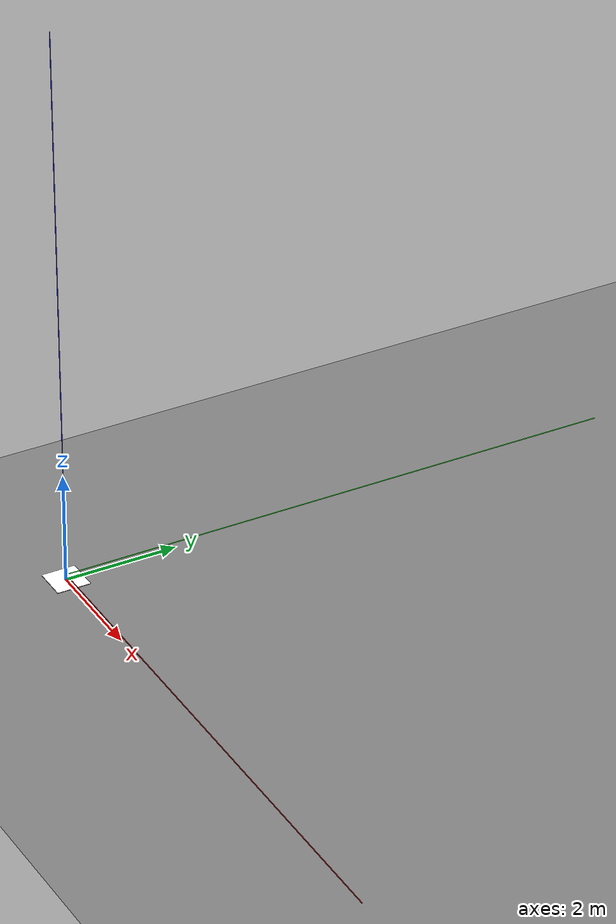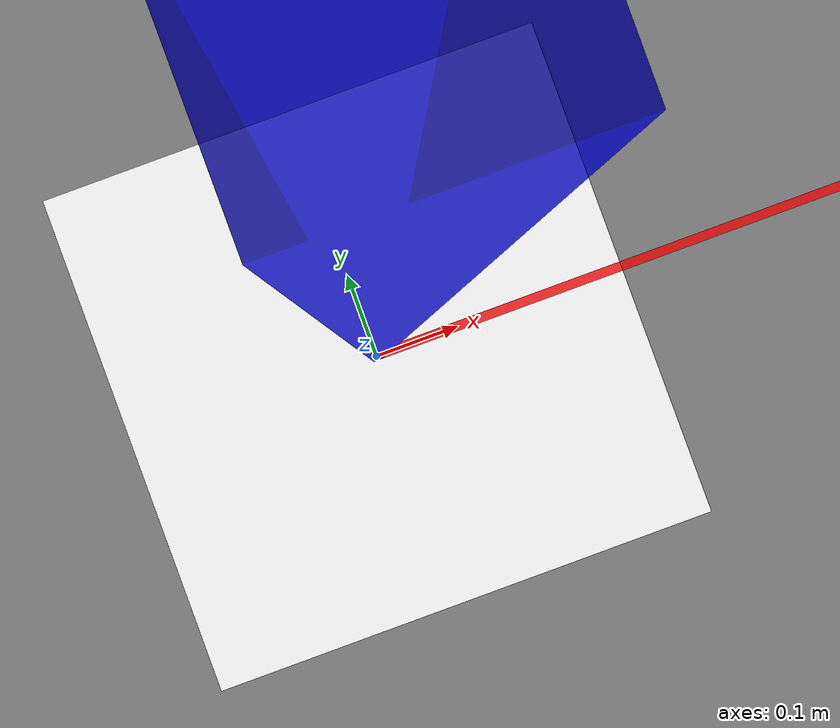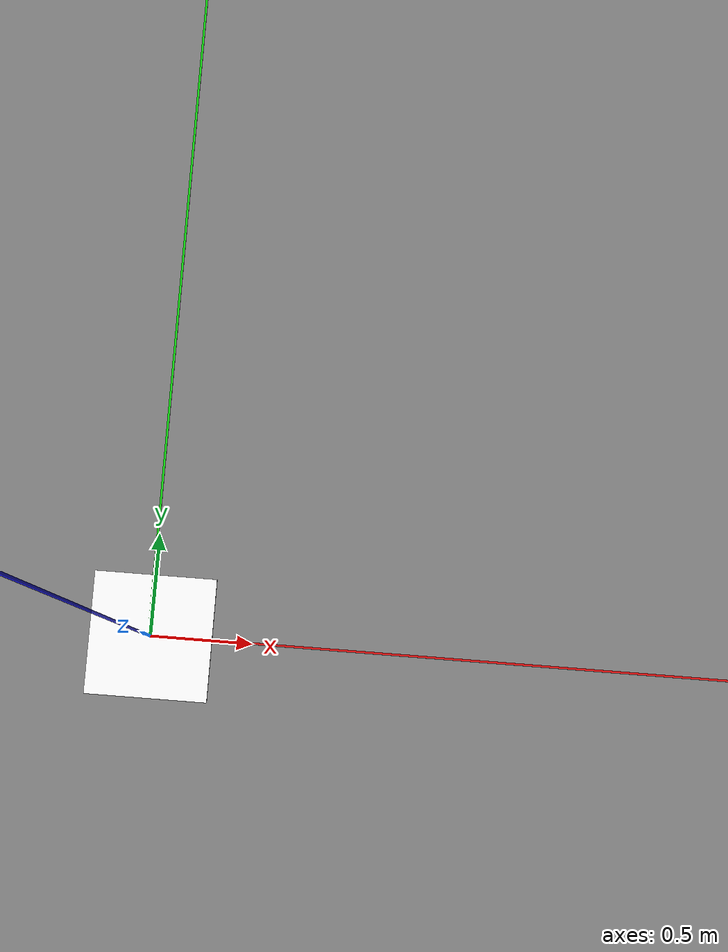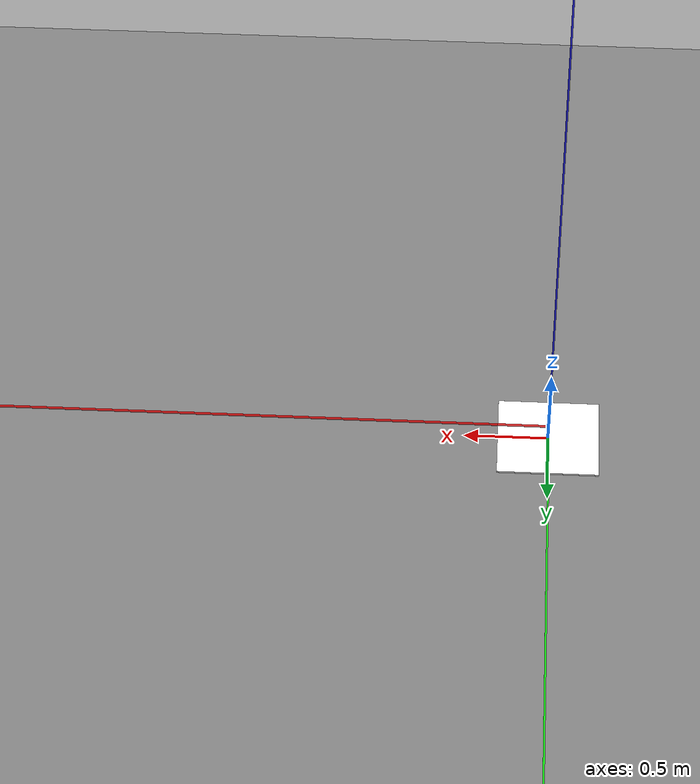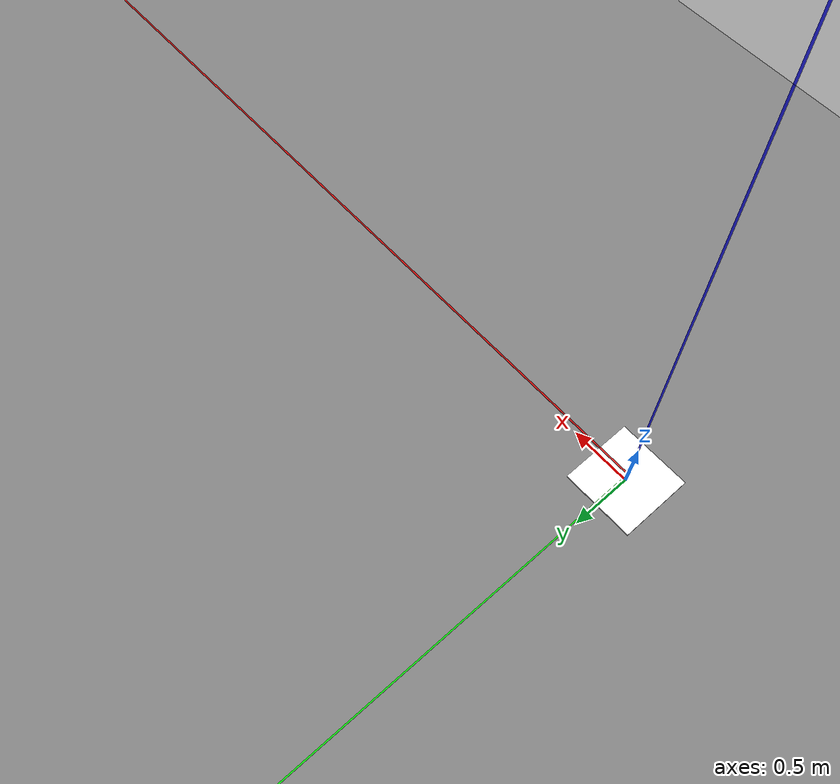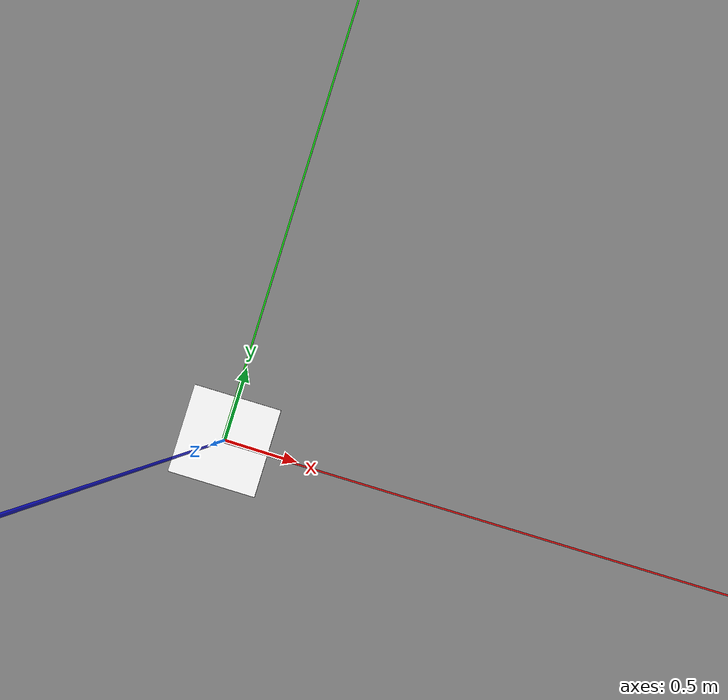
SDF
<sdf version="1.9">
 <world name="precision_landing_world">
  <physics name="1ms" type="ignore">
   <max_step_size>0.001</max_step_size>
   <real_time_factor>1.0</real_time_factor>
  </physics>
  <plugin filename="gz-sim-physics-system" name="gz::sim::systems::Physics"/>
  <plugin filename="gz-sim-sensors-system" name="gz::sim::systems::Sensors">
   <render_engine>ogre2</render_engine>
  </plugin>
  <plugin filename="gz-sim-user-commands-system" name="gz::sim::systems::UserCommands"/>
  <plugin filename="gz-sim-scene-broadcaster-system" name="gz::sim::systems::SceneBroadcaster"/>
  <plugin filename="gz-sim-imu-system" name="gz::sim::systems::Imu"/>
  <plugin filename="gz-sim-navsat-system" name="gz::sim::systems::NavSat"/>
  <scene><ambient>1.0 1.0 1.0</ambient><background>0.8 0.8 0.8</background></scene>
  <spherical_coordinates>
   <latitude_deg>-35.363262</latitude_deg>
   <longitude_deg>149.165237</longitude_deg>
   <elevation>584</elevation>
   <heading_deg>0</heading_deg>
   <surface_model>EARTH_WGS84</surface_model>
  </spherical_coordinates>
  <light type="directional" name="sun">
   <cast_shadows>false</cast_shadows>
   <pose>0 0 10 0 0 0</pose>
   <diffuse>0.8 0.8 0.8 1</diffuse>
   <specular>0.8 0.8 0.8 1</specular>
   <attenuation>
    <range>1000</range>
    <constant>0.9</constant>
    <linear>0.01</linear>
    <quadratic>0.001</quadratic>
   </attenuation>
   <direction>-0.5 0.1 -0.9</direction>
  </light>
  <model name="axes">
   <static>1</static>
   <link name="link">
    <visual name="r">
     <cast_shadows>0</cast_shadows>
     <pose>5 0 0.1 0 0 0</pose>
     <geometry><box><size>10 0.01 0.01</size></box></geometry>
     <material>
      <ambient>1 0 0 0.8</ambient>
      <diffuse>1 0 0 0.8</diffuse>
      <emissive>1 0 0 0.8</emissive>
      <specular>0.5 0.5 0.5 0.8</specular>
     </material>
    </visual>
    <visual name="g">
     <cast_shadows>0</cast_shadows>
     <pose>0 5 0.1 0 0 0</pose>
     <geometry><box><size>0.01 10 0.01</size></box></geometry>
     <material>
      <ambient>0 1 0 0.8</ambient>
      <diffuse>0 1 0 0.8</diffuse>
      <emissive>0 1 0 0.8</emissive>
      <specular>0.5 0.5 0.5 0.8</specular>
     </material>
    </visual>
    <visual name="b">
     <cast_shadows>0</cast_shadows>
     <pose>0 0 5.1 0 0 0</pose>
     <geometry><box><size>0.01 0.01 10</size></box></geometry>
     <material>
      <ambient>0 0 1 0.8</ambient>
      <diffuse>0 0 1 0.8</diffuse>
      <emissive>0 0 1 0.8</emissive>
      <specular>0.5 0.5 0.5 0.8</specular>
     </material>
    </visual>
    <sensor name="navsat_sensor" type="navsat"><always_on>1</always_on><update_rate>1</update_rate></sensor>
   </link>
  </model>
  <include><uri>model://lite_ground</uri></include>
  <include><uri>model://precision_landing_board</uri><pose>0 0 0.005 0 0 0</pose></include>
 </world>
</sdf>

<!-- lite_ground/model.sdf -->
<sdf version="1.9">
  <model name="lite_ground">
    <static>true</static>
    <link name="link">
      <collision name="collision">
        <geometry>
          <plane>
            <normal>0 0 1</normal>
          </plane>
        </geometry>
      </collision>
      <visual name="visual">
        <cast_shadows>false</cast_shadows>
        <geometry>
          <plane>
            <normal>0 0 1</normal>
            <size>200 200</size>
          </plane>
        </geometry>
        <material>
          <ambient>0.5 0.5 0.5 1</ambient>
          <diffuse>0.5 0.5 0.5 1</diffuse>
          <specular>0.05 0.05 0.05 1</specular>
        </material>
      </visual>
    </link>
  </model>
</sdf>

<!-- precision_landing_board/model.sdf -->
<sdf version="1.9">
  <model name="precision_landing_board">
    <static>true</static>
    <link name="link">
      <visual name="visual">
        <geometry>
          <box>
            <size>0.6 0.6 0.01</size>
          </box>
        </geometry>
        <material>
          <ambient>1 1 1 1</ambient>
          <diffuse>1 1 1 1</diffuse>
          <specular>0.1 0.1 0.1 1</specular>
          <pbr>
            <metal>
              <albedo_map>model://precision_landing_board/materials/textures/board.png</albedo_map>
              <roughness>1.0</roughness>
              <metalness>0.0</metalness>
            </metal>
          </pbr>
        </material>
      </visual>
      <collision name="collision">
        <geometry>
          <box>
            <size>0.6 0.6 0.01</size>
          </box>
        </geometry>
      </collision>
    </link>
  </model>
</sdf>
